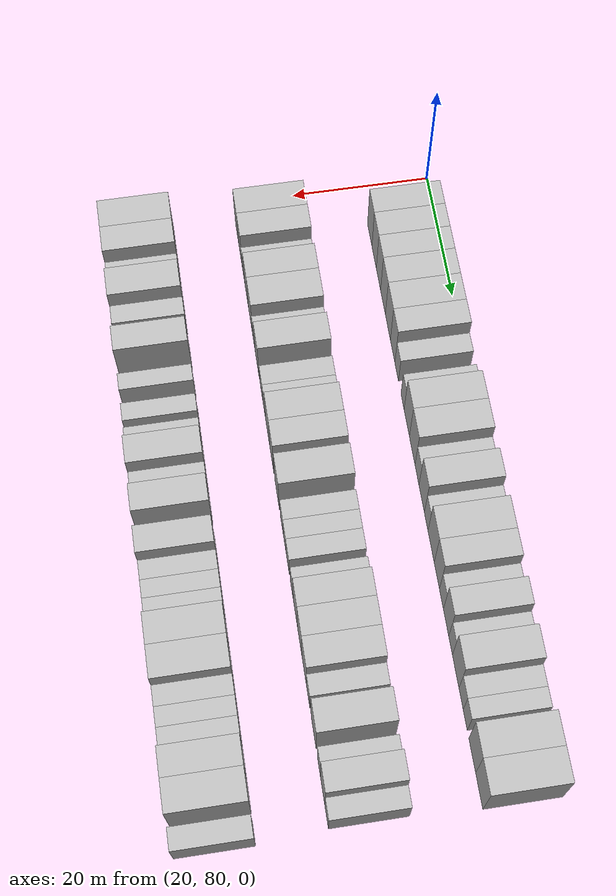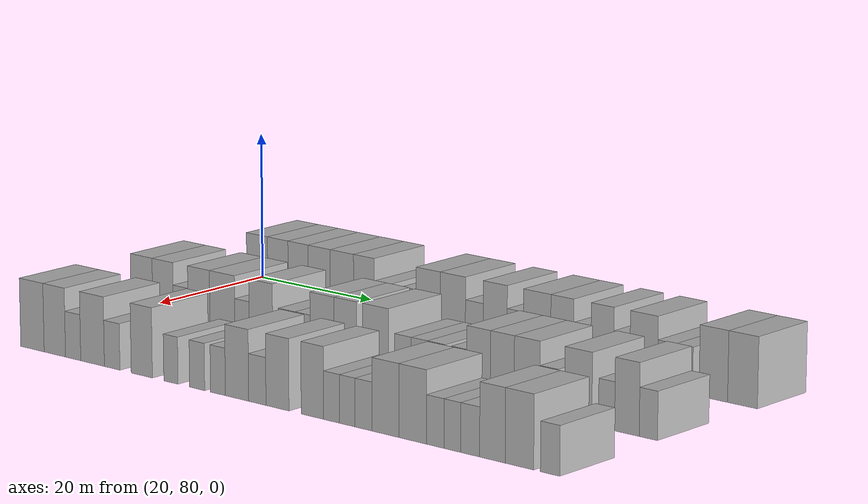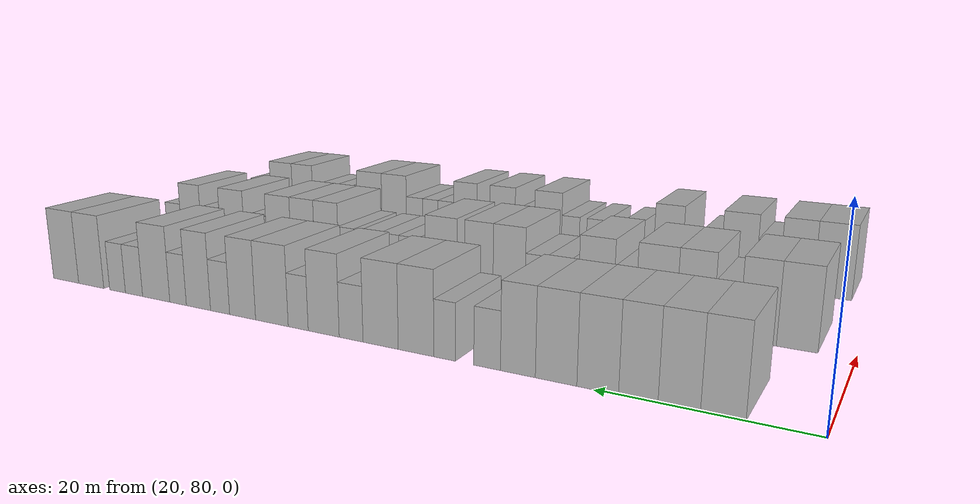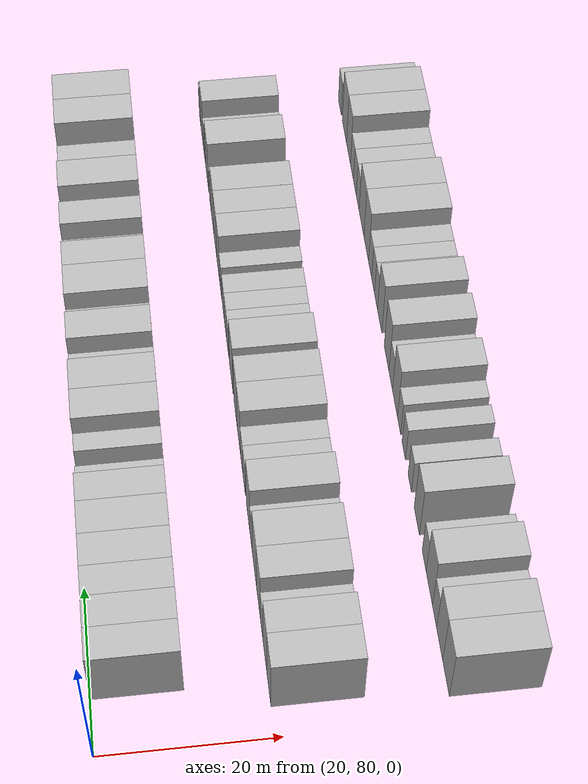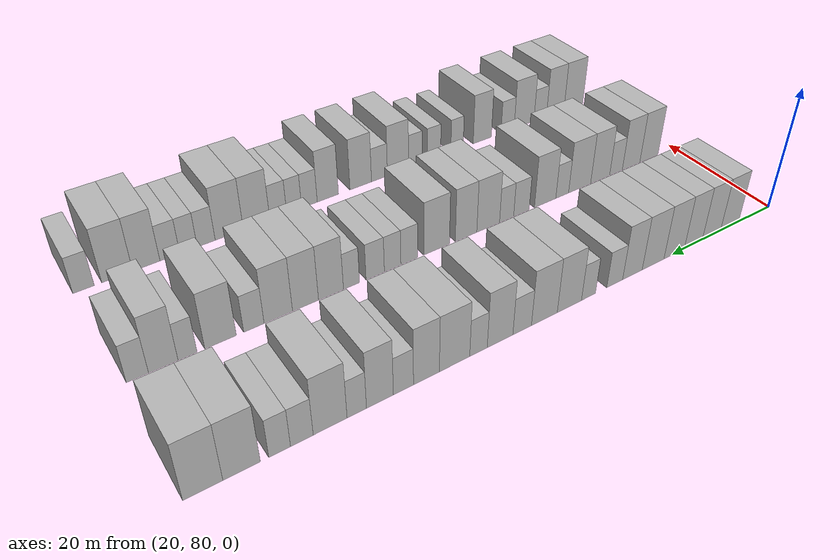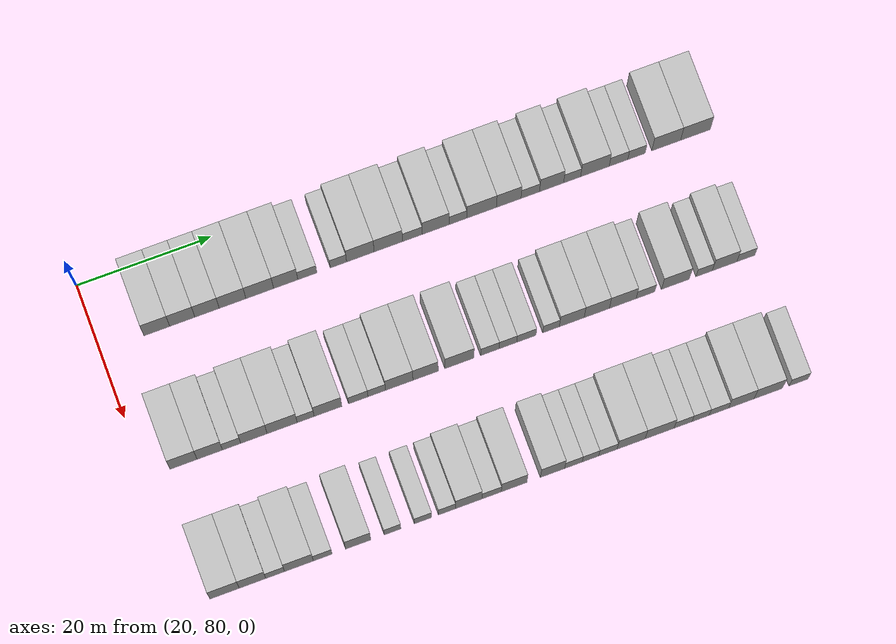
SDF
<sdf version="1.6">
 <world name="default">
  <model name="building_96">
   <static>1</static>
   <pose>25.0000 88.4164 0 0.000000 0.000000 0.000000</pose>
   <link name="link">
    <pose>0 0 4.50 0 0 0</pose>
    <collision name="collision"><geometry><box><size>10.0000 3.8488 9.0000</size></box></geometry></collision>
    <visual name="visual">
     <cast_shadows>0</cast_shadows>
     <geometry><box><size>10.0000 3.8488 9.0000</size></box></geometry>
     <material>
      <script>
       <uri>model://HANNAS_wall/materials/scripts</uri>
       <uri>model://HANNAS_wall/materials/textures</uri>
       <name>vrc/HANNAS_wall</name>
      </script>
     </material>
    </visual>
   </link>
  </model>
  <model name="building_97">
   <static>1</static>
   <pose>25.0000 92.2124 0 0.000000 0.000000 0.000000</pose>
   <link name="link">
    <pose>0 0 4.50 0 0 0</pose>
    <collision name="collision"><geometry><box><size>10.0000 3.7432 9.0000</size></box></geometry></collision>
    <visual name="visual">
     <cast_shadows>0</cast_shadows>
     <geometry><box><size>10.0000 3.7432 9.0000</size></box></geometry>
     <material>
      <script>
       <uri>model://HANNAS_wall/materials/scripts</uri>
       <uri>model://HANNAS_wall/materials/textures</uri>
       <name>vrc/HANNAS_wall</name>
      </script>
     </material>
    </visual>
   </link>
  </model>
  <model name="building_98">
   <static>1</static>
   <pose>25.0000 95.8940 0 0.000000 0.000000 0.000000</pose>
   <link name="link">
    <pose>0 0 4.50 0 0 0</pose>
    <collision name="collision"><geometry><box><size>10.0000 3.6201 9.0000</size></box></geometry></collision>
    <visual name="visual">
     <cast_shadows>0</cast_shadows>
     <geometry><box><size>10.0000 3.6201 9.0000</size></box></geometry>
     <material>
      <script>
       <uri>model://HANNAS_wall/materials/scripts</uri>
       <uri>model://HANNAS_wall/materials/textures</uri>
       <name>vrc/HANNAS_wall</name>
      </script>
     </material>
    </visual>
   </link>
  </model>
  <model name="building_99">
   <static>1</static>
   <pose>25.0000 99.6934 0 0.000000 0.000000 0.000000</pose>
   <link name="link">
    <pose>0 0 4.50 0 0 0</pose>
    <collision name="collision"><geometry><box><size>10.0000 3.9786 9.0000</size></box></geometry></collision>
    <visual name="visual">
     <cast_shadows>0</cast_shadows>
     <geometry><box><size>10.0000 3.9786 9.0000</size></box></geometry>
     <material>
      <script>
       <uri>model://HANNAS_wall/materials/scripts</uri>
       <uri>model://HANNAS_wall/materials/textures</uri>
       <name>vrc/HANNAS_wall</name>
      </script>
     </material>
    </visual>
   </link>
  </model>
  <model name="building_100">
   <static>1</static>
   <pose>25.0000 103.7533 0 0.000000 0.000000 0.000000</pose>
   <link name="link">
    <pose>0 0 4.50 0 0 0</pose>
    <collision name="collision"><geometry><box><size>10.0000 4.1412 9.0000</size></box></geometry></collision>
    <visual name="visual">
     <cast_shadows>0</cast_shadows>
     <geometry><box><size>10.0000 4.1412 9.0000</size></box></geometry>
     <material>
      <script>
       <uri>model://HANNAS_wall/materials/scripts</uri>
       <uri>model://HANNAS_wall/materials/textures</uri>
       <name>vrc/HANNAS_wall</name>
      </script>
     </material>
    </visual>
   </link>
  </model>
  <model name="building_101">
   <static>1</static>
   <pose>25.0000 107.6312 0 0.000000 0.000000 0.000000</pose>
   <link name="link">
    <pose>0 0 4.50 0 0 0</pose>
    <collision name="collision"><geometry><box><size>10.0000 3.6147 9.0000</size></box></geometry></collision>
    <visual name="visual">
     <cast_shadows>0</cast_shadows>
     <geometry><box><size>10.0000 3.6147 9.0000</size></box></geometry>
     <material>
      <script>
       <uri>model://HANNAS_wall/materials/scripts</uri>
       <uri>model://HANNAS_wall/materials/textures</uri>
       <name>vrc/HANNAS_wall</name>
      </script>
     </material>
    </visual>
   </link>
  </model>
  <model name="building_102">
   <static>1</static>
   <pose>25.0000 110.8674 0 0.000000 0.000000 0.000000</pose>
   <link name="link">
    <pose>0 0 3.00 0 0 0</pose>
    <collision name="collision"><geometry><box><size>10.0000 2.8577 6.0000</size></box></geometry></collision>
    <visual name="visual">
     <cast_shadows>0</cast_shadows>
     <geometry><box><size>10.0000 2.8577 6.0000</size></box></geometry>
     <material>
      <script>
       <uri>model://HANNAS_wall/materials/scripts</uri>
       <uri>model://HANNAS_wall/materials/textures</uri>
       <name>vrc/HANNAS_wall</name>
      </script>
     </material>
    </visual>
   </link>
  </model>
  <model name="building_103">
   <static>1</static>
   <pose>25.0000 115.5146 0 0.000000 0.000000 0.000000</pose>
   <link name="link">
    <pose>0 0 3.00 0 0 0</pose>
    <collision name="collision"><geometry><box><size>10.0000 2.4368 6.0000</size></box></geometry></collision>
    <visual name="visual">
     <cast_shadows>0</cast_shadows>
     <geometry><box><size>10.0000 2.4368 6.0000</size></box></geometry>
     <material>
      <script>
       <uri>model://HANNAS_wall/materials/scripts</uri>
       <uri>model://HANNAS_wall/materials/textures</uri>
       <name>vrc/HANNAS_wall</name>
      </script>
     </material>
    </visual>
   </link>
  </model>
  <model name="building_104">
   <static>1</static>
   <pose>25.0000 118.7937 0 0.000000 0.000000 0.000000</pose>
   <link name="link">
    <pose>0 0 4.50 0 0 0</pose>
    <collision name="collision"><geometry><box><size>10.0000 4.1213 9.0000</size></box></geometry></collision>
    <visual name="visual">
     <cast_shadows>0</cast_shadows>
     <geometry><box><size>10.0000 4.1213 9.0000</size></box></geometry>
     <material>
      <script>
       <uri>model://HANNAS_wall/materials/scripts</uri>
       <uri>model://HANNAS_wall/materials/textures</uri>
       <name>vrc/HANNAS_wall</name>
      </script>
     </material>
    </visual>
   </link>
  </model>
  <model name="building_105">
   <static>1</static>
   <pose>25.0000 122.9787 0 0.000000 0.000000 0.000000</pose>
   <link name="link">
    <pose>0 0 4.50 0 0 0</pose>
    <collision name="collision"><geometry><box><size>10.0000 4.2486 9.0000</size></box></geometry></collision>
    <visual name="visual">
     <cast_shadows>0</cast_shadows>
     <geometry><box><size>10.0000 4.2486 9.0000</size></box></geometry>
     <material>
      <script>
       <uri>model://HANNAS_wall/materials/scripts</uri>
       <uri>model://HANNAS_wall/materials/textures</uri>
       <name>vrc/HANNAS_wall</name>
      </script>
     </material>
    </visual>
   </link>
  </model>
  <model name="building_106">
   <static>1</static>
   <pose>25.0000 126.5879 0 0.000000 0.000000 0.000000</pose>
   <link name="link">
    <pose>0 0 3.00 0 0 0</pose>
    <collision name="collision"><geometry><box><size>10.0000 2.9697 6.0000</size></box></geometry></collision>
    <visual name="visual">
     <cast_shadows>0</cast_shadows>
     <geometry><box><size>10.0000 2.9697 6.0000</size></box></geometry>
     <material>
      <script>
       <uri>model://HANNAS_wall/materials/scripts</uri>
       <uri>model://HANNAS_wall/materials/textures</uri>
       <name>vrc/HANNAS_wall</name>
      </script>
     </material>
    </visual>
   </link>
  </model>
  <model name="building_107">
   <static>1</static>
   <pose>25.0000 130.0694 0 0.000000 0.000000 0.000000</pose>
   <link name="link">
    <pose>0 0 4.50 0 0 0</pose>
    <collision name="collision"><geometry><box><size>10.0000 3.9934 9.0000</size></box></geometry></collision>
    <visual name="visual">
     <cast_shadows>0</cast_shadows>
     <geometry><box><size>10.0000 3.9934 9.0000</size></box></geometry>
     <material>
      <script>
       <uri>model://HANNAS_wall/materials/scripts</uri>
       <uri>model://HANNAS_wall/materials/textures</uri>
       <name>vrc/HANNAS_wall</name>
      </script>
     </material>
    </visual>
   </link>
  </model>
  <model name="building_108">
   <static>1</static>
   <pose>25.0000 133.3914 0 0.000000 0.000000 0.000000</pose>
   <link name="link">
    <pose>0 0 3.00 0 0 0</pose>
    <collision name="collision"><geometry><box><size>10.0000 2.6506 6.0000</size></box></geometry></collision>
    <visual name="visual">
     <cast_shadows>0</cast_shadows>
     <geometry><box><size>10.0000 2.6506 6.0000</size></box></geometry>
     <material>
      <script>
       <uri>model://HANNAS_wall/materials/scripts</uri>
       <uri>model://HANNAS_wall/materials/textures</uri>
       <name>vrc/HANNAS_wall</name>
      </script>
     </material>
    </visual>
   </link>
  </model>
  <model name="building_109">
   <static>1</static>
   <pose>25.0000 136.9515 0 0.000000 0.000000 0.000000</pose>
   <link name="link">
    <pose>0 0 4.50 0 0 0</pose>
    <collision name="collision"><geometry><box><size>10.0000 4.4696 9.0000</size></box></geometry></collision>
    <visual name="visual">
     <cast_shadows>0</cast_shadows>
     <geometry><box><size>10.0000 4.4696 9.0000</size></box></geometry>
     <material>
      <script>
       <uri>model://HANNAS_wall/materials/scripts</uri>
       <uri>model://HANNAS_wall/materials/textures</uri>
       <name>vrc/HANNAS_wall</name>
      </script>
     </material>
    </visual>
   </link>
  </model>
  <model name="building_110">
   <static>1</static>
   <pose>25.0000 141.0312 0 0.000000 0.000000 0.000000</pose>
   <link name="link">
    <pose>0 0 4.50 0 0 0</pose>
    <collision name="collision"><geometry><box><size>10.0000 3.6898 9.0000</size></box></geometry></collision>
    <visual name="visual">
     <cast_shadows>0</cast_shadows>
     <geometry><box><size>10.0000 3.6898 9.0000</size></box></geometry>
     <material>
      <script>
       <uri>model://HANNAS_wall/materials/scripts</uri>
       <uri>model://HANNAS_wall/materials/textures</uri>
       <name>vrc/HANNAS_wall</name>
      </script>
     </material>
    </visual>
   </link>
  </model>
  <model name="building_111">
   <static>1</static>
   <pose>25.0000 144.2690 0 0.000000 0.000000 0.000000</pose>
   <link name="link">
    <pose>0 0 3.00 0 0 0</pose>
    <collision name="collision"><geometry><box><size>10.0000 2.7858 6.0000</size></box></geometry></collision>
    <visual name="visual">
     <cast_shadows>0</cast_shadows>
     <geometry><box><size>10.0000 2.7858 6.0000</size></box></geometry>
     <material>
      <script>
       <uri>model://HANNAS_wall/materials/scripts</uri>
       <uri>model://HANNAS_wall/materials/textures</uri>
       <name>vrc/HANNAS_wall</name>
      </script>
     </material>
    </visual>
   </link>
  </model>
  <model name="building_112">
   <static>1</static>
   <pose>25.0000 147.4776 0 0.000000 0.000000 0.000000</pose>
   <link name="link">
    <pose>0 0 4.50 0 0 0</pose>
    <collision name="collision"><geometry><box><size>10.0000 3.6314 9.0000</size></box></geometry></collision>
    <visual name="visual">
     <cast_shadows>0</cast_shadows>
     <geometry><box><size>10.0000 3.6314 9.0000</size></box></geometry>
     <material>
      <script>
       <uri>model://HANNAS_wall/materials/scripts</uri>
       <uri>model://HANNAS_wall/materials/textures</uri>
       <name>vrc/HANNAS_wall</name>
      </script>
     </material>
    </visual>
   </link>
  </model>
  <model name="building_113">
   <static>1</static>
   <pose>25.0000 150.5665 0 0.000000 0.000000 0.000000</pose>
   <link name="link">
    <pose>0 0 3.00 0 0 0</pose>
    <collision name="collision"><geometry><box><size>10.0000 2.5464 6.0000</size></box></geometry></collision>
    <visual name="visual">
     <cast_shadows>0</cast_shadows>
     <geometry><box><size>10.0000 2.5464 6.0000</size></box></geometry>
     <material>
      <script>
       <uri>model://HANNAS_wall/materials/scripts</uri>
       <uri>model://HANNAS_wall/materials/textures</uri>
       <name>vrc/HANNAS_wall</name>
      </script>
     </material>
    </visual>
   </link>
  </model>
  <model name="building_114">
   <static>1</static>
   <pose>25.0000 153.9998 0 0.000000 0.000000 0.000000</pose>
   <link name="link">
    <pose>0 0 4.50 0 0 0</pose>
    <collision name="collision"><geometry><box><size>10.0000 4.3201 9.0000</size></box></geometry></collision>
    <visual name="visual">
     <cast_shadows>0</cast_shadows>
     <geometry><box><size>10.0000 4.3201 9.0000</size></box></geometry>
     <material>
      <script>
       <uri>model://HANNAS_wall/materials/scripts</uri>
       <uri>model://HANNAS_wall/materials/textures</uri>
       <name>vrc/HANNAS_wall</name>
      </script>
     </material>
    </visual>
   </link>
  </model>
  <model name="building_115">
   <static>1</static>
   <pose>25.0000 157.5622 0 0.000000 0.000000 0.000000</pose>
   <link name="link">
    <pose>0 0 3.00 0 0 0</pose>
    <collision name="collision"><geometry><box><size>10.0000 2.8048 6.0000</size></box></geometry></collision>
    <visual name="visual">
     <cast_shadows>0</cast_shadows>
     <geometry><box><size>10.0000 2.8048 6.0000</size></box></geometry>
     <material>
      <script>
       <uri>model://HANNAS_wall/materials/scripts</uri>
       <uri>model://HANNAS_wall/materials/textures</uri>
       <name>vrc/HANNAS_wall</name>
      </script>
     </material>
    </visual>
   </link>
  </model>
  <model name="building_116">
   <static>1</static>
   <pose>25.0000 160.2775 0 0.000000 0.000000 0.000000</pose>
   <link name="link">
    <pose>0 0 3.00 0 0 0</pose>
    <collision name="collision"><geometry><box><size>10.0000 2.6258 6.0000</size></box></geometry></collision>
    <visual name="visual">
     <cast_shadows>0</cast_shadows>
     <geometry><box><size>10.0000 2.6258 6.0000</size></box></geometry>
     <material>
      <script>
       <uri>model://HANNAS_wall/materials/scripts</uri>
       <uri>model://HANNAS_wall/materials/textures</uri>
       <name>vrc/HANNAS_wall</name>
      </script>
     </material>
    </visual>
   </link>
  </model>
  <model name="building_117">
   <static>1</static>
   <pose>25.0000 164.7598 0 0.000000 0.000000 0.000000</pose>
   <link name="link">
    <pose>0 0 4.50 0 0 0</pose>
    <collision name="collision"><geometry><box><size>10.0000 4.3387 9.0000</size></box></geometry></collision>
    <visual name="visual">
     <cast_shadows>0</cast_shadows>
     <geometry><box><size>10.0000 4.3387 9.0000</size></box></geometry>
     <material>
      <script>
       <uri>model://HANNAS_wall/materials/scripts</uri>
       <uri>model://HANNAS_wall/materials/textures</uri>
       <name>vrc/HANNAS_wall</name>
      </script>
     </material>
    </visual>
   </link>
  </model>
  <model name="building_118">
   <static>1</static>
   <pose>25.0000 169.1681 0 0.000000 0.000000 0.000000</pose>
   <link name="link">
    <pose>0 0 4.50 0 0 0</pose>
    <collision name="collision"><geometry><box><size>10.0000 4.4780 9.0000</size></box></geometry></collision>
    <visual name="visual">
     <cast_shadows>0</cast_shadows>
     <geometry><box><size>10.0000 4.4780 9.0000</size></box></geometry>
     <material>
      <script>
       <uri>model://HANNAS_wall/materials/scripts</uri>
       <uri>model://HANNAS_wall/materials/textures</uri>
       <name>vrc/HANNAS_wall</name>
      </script>
     </material>
    </visual>
   </link>
  </model>
  <model name="building_263">
   <static>1</static>
   <pose>44.0000 85.5692 0 0.000000 0.000000 0.000000</pose>
   <link name="link">
    <pose>0 0 4.50 0 0 0</pose>
    <collision name="collision"><geometry><box><size>10.0000 4.0172 9.0000</size></box></geometry></collision>
    <visual name="visual">
     <cast_shadows>0</cast_shadows>
     <geometry><box><size>10.0000 4.0172 9.0000</size></box></geometry>
     <material>
      <script>
       <uri>model://HANNAS_wall/materials/scripts</uri>
       <uri>model://HANNAS_wall/materials/textures</uri>
       <name>vrc/HANNAS_wall</name>
      </script>
     </material>
    </visual>
   </link>
  </model>
  <model name="building_264">
   <static>1</static>
   <pose>44.0000 89.4637 0 0.000000 0.000000 0.000000</pose>
   <link name="link">
    <pose>0 0 4.50 0 0 0</pose>
    <collision name="collision"><geometry><box><size>10.0000 3.7717 9.0000</size></box></geometry></collision>
    <visual name="visual">
     <cast_shadows>0</cast_shadows>
     <geometry><box><size>10.0000 3.7717 9.0000</size></box></geometry>
     <material>
      <script>
       <uri>model://HANNAS_wall/materials/scripts</uri>
       <uri>model://HANNAS_wall/materials/textures</uri>
       <name>vrc/HANNAS_wall</name>
      </script>
     </material>
    </visual>
   </link>
  </model>
  <model name="building_265">
   <static>1</static>
   <pose>44.0000 92.6930 0 0.000000 0.000000 0.000000</pose>
   <link name="link">
    <pose>0 0 3.00 0 0 0</pose>
    <collision name="collision"><geometry><box><size>10.0000 2.6869 6.0000</size></box></geometry></collision>
    <visual name="visual">
     <cast_shadows>0</cast_shadows>
     <geometry><box><size>10.0000 2.6869 6.0000</size></box></geometry>
     <material>
      <script>
       <uri>model://HANNAS_wall/materials/scripts</uri>
       <uri>model://HANNAS_wall/materials/textures</uri>
       <name>vrc/HANNAS_wall</name>
      </script>
     </material>
    </visual>
   </link>
  </model>
  <model name="building_266">
   <static>1</static>
   <pose>44.0000 96.0038 0 0.000000 0.000000 0.000000</pose>
   <link name="link">
    <pose>0 0 4.50 0 0 0</pose>
    <collision name="collision"><geometry><box><size>10.0000 3.9347 9.0000</size></box></geometry></collision>
    <visual name="visual">
     <cast_shadows>0</cast_shadows>
     <geometry><box><size>10.0000 3.9347 9.0000</size></box></geometry>
     <material>
      <script>
       <uri>model://HANNAS_wall/materials/scripts</uri>
       <uri>model://HANNAS_wall/materials/textures</uri>
       <name>vrc/HANNAS_wall</name>
      </script>
     </material>
    </visual>
   </link>
  </model>
  <model name="building_267">
   <static>1</static>
   <pose>44.0000 100.1988 0 0.000000 0.000000 0.000000</pose>
   <link name="link">
    <pose>0 0 4.50 0 0 0</pose>
    <collision name="collision"><geometry><box><size>10.0000 4.4554 9.0000</size></box></geometry></collision>
    <visual name="visual">
     <cast_shadows>0</cast_shadows>
     <geometry><box><size>10.0000 4.4554 9.0000</size></box></geometry>
     <material>
      <script>
       <uri>model://HANNAS_wall/materials/scripts</uri>
       <uri>model://HANNAS_wall/materials/textures</uri>
       <name>vrc/HANNAS_wall</name>
      </script>
     </material>
    </visual>
   </link>
  </model>
  <model name="building_268">
   <static>1</static>
   <pose>44.0000 103.6896 0 0.000000 0.000000 0.000000</pose>
   <link name="link">
    <pose>0 0 3.00 0 0 0</pose>
    <collision name="collision"><geometry><box><size>10.0000 2.5262 6.0000</size></box></geometry></collision>
    <visual name="visual">
     <cast_shadows>0</cast_shadows>
     <geometry><box><size>10.0000 2.5262 6.0000</size></box></geometry>
     <material>
      <script>
       <uri>model://HANNAS_wall/materials/scripts</uri>
       <uri>model://HANNAS_wall/materials/textures</uri>
       <name>vrc/HANNAS_wall</name>
      </script>
     </material>
    </visual>
   </link>
  </model>
  <model name="building_269">
   <static>1</static>
   <pose>44.0000 107.0131 0 0.000000 0.000000 0.000000</pose>
   <link name="link">
    <pose>0 0 4.50 0 0 0</pose>
    <collision name="collision"><geometry><box><size>10.0000 4.1209 9.0000</size></box></geometry></collision>
    <visual name="visual">
     <cast_shadows>0</cast_shadows>
     <geometry><box><size>10.0000 4.1209 9.0000</size></box></geometry>
     <material>
      <script>
       <uri>model://HANNAS_wall/materials/scripts</uri>
       <uri>model://HANNAS_wall/materials/textures</uri>
       <name>vrc/HANNAS_wall</name>
      </script>
     </material>
    </visual>
   </link>
  </model>
  <model name="building_270">
   <static>1</static>
   <pose>44.0000 111.5215 0 0.000000 0.000000 0.000000</pose>
   <link name="link">
    <pose>0 0 3.00 0 0 0</pose>
    <collision name="collision"><geometry><box><size>10.0000 2.8960 6.0000</size></box></geometry></collision>
    <visual name="visual">
     <cast_shadows>0</cast_shadows>
     <geometry><box><size>10.0000 2.8960 6.0000</size></box></geometry>
     <material>
      <script>
       <uri>model://HANNAS_wall/materials/scripts</uri>
       <uri>model://HANNAS_wall/materials/textures</uri>
       <name>vrc/HANNAS_wall</name>
      </script>
     </material>
    </visual>
   </link>
  </model>
  <model name="building_271">
   <static>1</static>
   <pose>44.0000 114.2667 0 0.000000 0.000000 0.000000</pose>
   <link name="link">
    <pose>0 0 3.00 0 0 0</pose>
    <collision name="collision"><geometry><box><size>10.0000 2.5943 6.0000</size></box></geometry></collision>
    <visual name="visual">
     <cast_shadows>0</cast_shadows>
     <geometry><box><size>10.0000 2.5943 6.0000</size></box></geometry>
     <material>
      <script>
       <uri>model://HANNAS_wall/materials/scripts</uri>
       <uri>model://HANNAS_wall/materials/textures</uri>
       <name>vrc/HANNAS_wall</name>
      </script>
     </material>
    </visual>
   </link>
  </model>
  <model name="building_272">
   <static>1</static>
   <pose>44.0000 117.6112 0 0.000000 0.000000 0.000000</pose>
   <link name="link">
    <pose>0 0 4.50 0 0 0</pose>
    <collision name="collision"><geometry><box><size>10.0000 4.0947 9.0000</size></box></geometry></collision>
    <visual name="visual">
     <cast_shadows>0</cast_shadows>
     <geometry><box><size>10.0000 4.0947 9.0000</size></box></geometry>
     <material>
      <script>
       <uri>model://HANNAS_wall/materials/scripts</uri>
       <uri>model://HANNAS_wall/materials/textures</uri>
       <name>vrc/HANNAS_wall</name>
      </script>
     </material>
    </visual>
   </link>
  </model>
  <model name="building_273">
   <static>1</static>
   <pose>44.0000 121.5410 0 0.000000 0.000000 0.000000</pose>
   <link name="link">
    <pose>0 0 4.50 0 0 0</pose>
    <collision name="collision"><geometry><box><size>10.0000 3.7649 9.0000</size></box></geometry></collision>
    <visual name="visual">
     <cast_shadows>0</cast_shadows>
     <geometry><box><size>10.0000 3.7649 9.0000</size></box></geometry>
     <material>
      <script>
       <uri>model://HANNAS_wall/materials/scripts</uri>
       <uri>model://HANNAS_wall/materials/textures</uri>
       <name>vrc/HANNAS_wall</name>
      </script>
     </material>
    </visual>
   </link>
  </model>
  <model name="building_274">
   <static>1</static>
   <pose>44.0000 126.5900 0 0.000000 0.000000 0.000000</pose>
   <link name="link">
    <pose>0 0 4.50 0 0 0</pose>
    <collision name="collision"><geometry><box><size>10.0000 4.3331 9.0000</size></box></geometry></collision>
    <visual name="visual">
     <cast_shadows>0</cast_shadows>
     <geometry><box><size>10.0000 4.3331 9.0000</size></box></geometry>
     <material>
      <script>
       <uri>model://HANNAS_wall/materials/scripts</uri>
       <uri>model://HANNAS_wall/materials/textures</uri>
       <name>vrc/HANNAS_wall</name>
      </script>
     </material>
    </visual>
   </link>
  </model>
  <model name="building_275">
   <static>1</static>
   <pose>44.0000 131.1395 0 0.000000 0.000000 0.000000</pose>
   <link name="link">
    <pose>0 0 3.00 0 0 0</pose>
    <collision name="collision"><geometry><box><size>10.0000 2.7660 6.0000</size></box></geometry></collision>
    <visual name="visual">
     <cast_shadows>0</cast_shadows>
     <geometry><box><size>10.0000 2.7660 6.0000</size></box></geometry>
     <material>
      <script>
       <uri>model://HANNAS_wall/materials/scripts</uri>
       <uri>model://HANNAS_wall/materials/textures</uri>
       <name>vrc/HANNAS_wall</name>
      </script>
     </material>
    </visual>
   </link>
  </model>
  <model name="building_276">
   <static>1</static>
   <pose>44.0000 133.8413 0 0.000000 0.000000 0.000000</pose>
   <link name="link">
    <pose>0 0 3.00 0 0 0</pose>
    <collision name="collision"><geometry><box><size>10.0000 2.6375 6.0000</size></box></geometry></collision>
    <visual name="visual">
     <cast_shadows>0</cast_shadows>
     <geometry><box><size>10.0000 2.6375 6.0000</size></box></geometry>
     <material>
      <script>
       <uri>model://HANNAS_wall/materials/scripts</uri>
       <uri>model://HANNAS_wall/materials/textures</uri>
       <name>vrc/HANNAS_wall</name>
      </script>
     </material>
    </visual>
   </link>
  </model>
  <model name="building_277">
   <static>1</static>
   <pose>44.0000 136.6030 0 0.000000 0.000000 0.000000</pose>
   <link name="link">
    <pose>0 0 3.00 0 0 0</pose>
    <collision name="collision"><geometry><box><size>10.0000 2.8860 6.0000</size></box></geometry></collision>
    <visual name="visual">
     <cast_shadows>0</cast_shadows>
     <geometry><box><size>10.0000 2.8860 6.0000</size></box></geometry>
     <material>
      <script>
       <uri>model://HANNAS_wall/materials/scripts</uri>
       <uri>model://HANNAS_wall/materials/textures</uri>
       <name>vrc/HANNAS_wall</name>
      </script>
     </material>
    </visual>
   </link>
  </model>
  <model name="building_278">
   <static>1</static>
   <pose>44.0000 140.2768 0 0.000000 0.000000 0.000000</pose>
   <link name="link">
    <pose>0 0 3.00 0 0 0</pose>
    <collision name="collision"><geometry><box><size>10.0000 2.4615 6.0000</size></box></geometry></collision>
    <visual name="visual">
     <cast_shadows>0</cast_shadows>
     <geometry><box><size>10.0000 2.4615 6.0000</size></box></geometry>
     <material>
      <script>
       <uri>model://HANNAS_wall/materials/scripts</uri>
       <uri>model://HANNAS_wall/materials/textures</uri>
       <name>vrc/HANNAS_wall</name>
      </script>
     </material>
    </visual>
   </link>
  </model>
  <model name="building_279">
   <static>1</static>
   <pose>44.0000 143.3740 0 0.000000 0.000000 0.000000</pose>
   <link name="link">
    <pose>0 0 4.50 0 0 0</pose>
    <collision name="collision"><geometry><box><size>10.0000 3.7329 9.0000</size></box></geometry></collision>
    <visual name="visual">
     <cast_shadows>0</cast_shadows>
     <geometry><box><size>10.0000 3.7329 9.0000</size></box></geometry>
     <material>
      <script>
       <uri>model://HANNAS_wall/materials/scripts</uri>
       <uri>model://HANNAS_wall/materials/textures</uri>
       <name>vrc/HANNAS_wall</name>
      </script>
     </material>
    </visual>
   </link>
  </model>
  <model name="building_280">
   <static>1</static>
   <pose>44.0000 147.1297 0 0.000000 0.000000 0.000000</pose>
   <link name="link">
    <pose>0 0 4.50 0 0 0</pose>
    <collision name="collision"><geometry><box><size>10.0000 3.7787 9.0000</size></box></geometry></collision>
    <visual name="visual">
     <cast_shadows>0</cast_shadows>
     <geometry><box><size>10.0000 3.7787 9.0000</size></box></geometry>
     <material>
      <script>
       <uri>model://HANNAS_wall/materials/scripts</uri>
       <uri>model://HANNAS_wall/materials/textures</uri>
       <name>vrc/HANNAS_wall</name>
      </script>
     </material>
    </visual>
   </link>
  </model>
  <model name="building_281">
   <static>1</static>
   <pose>44.0000 151.0255 0 0.000000 0.000000 0.000000</pose>
   <link name="link">
    <pose>0 0 4.50 0 0 0</pose>
    <collision name="collision"><geometry><box><size>10.0000 4.0128 9.0000</size></box></geometry></collision>
    <visual name="visual">
     <cast_shadows>0</cast_shadows>
     <geometry><box><size>10.0000 4.0128 9.0000</size></box></geometry>
     <material>
      <script>
       <uri>model://HANNAS_wall/materials/scripts</uri>
       <uri>model://HANNAS_wall/materials/textures</uri>
       <name>vrc/HANNAS_wall</name>
      </script>
     </material>
    </visual>
   </link>
  </model>
  <model name="building_282">
   <static>1</static>
   <pose>44.0000 154.4330 0 0.000000 0.000000 0.000000</pose>
   <link name="link">
    <pose>0 0 3.00 0 0 0</pose>
    <collision name="collision"><geometry><box><size>10.0000 2.8023 6.0000</size></box></geometry></collision>
    <visual name="visual">
     <cast_shadows>0</cast_shadows>
     <geometry><box><size>10.0000 2.8023 6.0000</size></box></geometry>
     <material>
      <script>
       <uri>model://HANNAS_wall/materials/scripts</uri>
       <uri>model://HANNAS_wall/materials/textures</uri>
       <name>vrc/HANNAS_wall</name>
      </script>
     </material>
    </visual>
   </link>
  </model>
  <model name="building_283">
   <static>1</static>
   <pose>44.0000 158.9296 0 0.000000 0.000000 0.000000</pose>
   <link name="link">
    <pose>0 0 4.50 0 0 0</pose>
    <collision name="collision"><geometry><box><size>10.0000 4.1908 9.0000</size></box></geometry></collision>
    <visual name="visual">
     <cast_shadows>0</cast_shadows>
     <geometry><box><size>10.0000 4.1908 9.0000</size></box></geometry>
     <material>
      <script>
       <uri>model://HANNAS_wall/materials/scripts</uri>
       <uri>model://HANNAS_wall/materials/textures</uri>
       <name>vrc/HANNAS_wall</name>
      </script>
     </material>
    </visual>
   </link>
  </model>
  <model name="building_284">
   <static>1</static>
   <pose>44.0000 163.2420 0 0.000000 0.000000 0.000000</pose>
   <link name="link">
    <pose>0 0 3.00 0 0 0</pose>
    <collision name="collision"><geometry><box><size>10.0000 2.4342 6.0000</size></box></geometry></collision>
    <visual name="visual">
     <cast_shadows>0</cast_shadows>
     <geometry><box><size>10.0000 2.4342 6.0000</size></box></geometry>
     <material>
      <script>
       <uri>model://HANNAS_wall/materials/scripts</uri>
       <uri>model://HANNAS_wall/materials/textures</uri>
       <name>vrc/HANNAS_wall</name>
      </script>
     </material>
    </visual>
   </link>
  </model>
  <model name="building_285">
   <static>1</static>
   <pose>44.0000 166.3050 0 0.000000 0.000000 0.000000</pose>
   <link name="link">
    <pose>0 0 4.50 0 0 0</pose>
    <collision name="collision"><geometry><box><size>10.0000 3.6917 9.0000</size></box></geometry></collision>
    <visual name="visual">
     <cast_shadows>0</cast_shadows>
     <geometry><box><size>10.0000 3.6917 9.0000</size></box></geometry>
     <material>
      <script>
       <uri>model://HANNAS_wall/materials/scripts</uri>
       <uri>model://HANNAS_wall/materials/textures</uri>
       <name>vrc/HANNAS_wall</name>
      </script>
     </material>
    </visual>
   </link>
  </model>
  <model name="building_286">
   <static>1</static>
   <pose>44.0000 169.5100 0 0.000000 0.000000 0.000000</pose>
   <link name="link">
    <pose>0 0 3.00 0 0 0</pose>
    <collision name="collision"><geometry><box><size>10.0000 2.7184 6.0000</size></box></geometry></collision>
    <visual name="visual">
     <cast_shadows>0</cast_shadows>
     <geometry><box><size>10.0000 2.7184 6.0000</size></box></geometry>
     <material>
      <script>
       <uri>model://HANNAS_wall/materials/scripts</uri>
       <uri>model://HANNAS_wall/materials/textures</uri>
       <name>vrc/HANNAS_wall</name>
      </script>
     </material>
    </visual>
   </link>
  </model>
  <model name="building_447">
   <static>1</static>
   <pose>63.0000 84.8067 0 0.000000 0.000000 0.000000</pose>
   <link name="link">
    <pose>0 0 4.50 0 0 0</pose>
    <collision name="collision"><geometry><box><size>10.0000 4.3233 9.0000</size></box></geometry></collision>
    <visual name="visual">
     <cast_shadows>0</cast_shadows>
     <geometry><box><size>10.0000 4.3233 9.0000</size></box></geometry>
     <material>
      <script>
       <uri>model://HANNAS_wall/materials/scripts</uri>
       <uri>model://HANNAS_wall/materials/textures</uri>
       <name>vrc/HANNAS_wall</name>
      </script>
     </material>
    </visual>
   </link>
  </model>
  <model name="building_448">
   <static>1</static>
   <pose>63.0000 88.9258 0 0.000000 0.000000 0.000000</pose>
   <link name="link">
    <pose>0 0 4.50 0 0 0</pose>
    <collision name="collision"><geometry><box><size>10.0000 3.9150 9.0000</size></box></geometry></collision>
    <visual name="visual">
     <cast_shadows>0</cast_shadows>
     <geometry><box><size>10.0000 3.9150 9.0000</size></box></geometry>
     <material>
      <script>
       <uri>model://HANNAS_wall/materials/scripts</uri>
       <uri>model://HANNAS_wall/materials/textures</uri>
       <name>vrc/HANNAS_wall</name>
      </script>
     </material>
    </visual>
   </link>
  </model>
  <model name="building_449">
   <static>1</static>
   <pose>63.0000 92.2634 0 0.000000 0.000000 0.000000</pose>
   <link name="link">
    <pose>0 0 3.00 0 0 0</pose>
    <collision name="collision"><geometry><box><size>10.0000 2.7602 6.0000</size></box></geometry></collision>
    <visual name="visual">
     <cast_shadows>0</cast_shadows>
     <geometry><box><size>10.0000 2.7602 6.0000</size></box></geometry>
     <material>
      <script>
       <uri>model://HANNAS_wall/materials/scripts</uri>
       <uri>model://HANNAS_wall/materials/textures</uri>
       <name>vrc/HANNAS_wall</name>
      </script>
     </material>
    </visual>
   </link>
  </model>
  <model name="building_450">
   <static>1</static>
   <pose>63.0000 95.7734 0 0.000000 0.000000 0.000000</pose>
   <link name="link">
    <pose>0 0 4.50 0 0 0</pose>
    <collision name="collision"><geometry><box><size>10.0000 4.2597 9.0000</size></box></geometry></collision>
    <visual name="visual">
     <cast_shadows>0</cast_shadows>
     <geometry><box><size>10.0000 4.2597 9.0000</size></box></geometry>
     <material>
      <script>
       <uri>model://HANNAS_wall/materials/scripts</uri>
       <uri>model://HANNAS_wall/materials/textures</uri>
       <name>vrc/HANNAS_wall</name>
      </script>
     </material>
    </visual>
   </link>
  </model>
  <model name="building_451">
   <static>1</static>
   <pose>63.0000 99.2891 0 0.000000 0.000000 0.000000</pose>
   <link name="link">
    <pose>0 0 3.00 0 0 0</pose>
    <collision name="collision"><geometry><box><size>10.0000 2.7719 6.0000</size></box></geometry></collision>
    <visual name="visual">
     <cast_shadows>0</cast_shadows>
     <geometry><box><size>10.0000 2.7719 6.0000</size></box></geometry>
     <material>
      <script>
       <uri>model://HANNAS_wall/materials/scripts</uri>
       <uri>model://HANNAS_wall/materials/textures</uri>
       <name>vrc/HANNAS_wall</name>
      </script>
     </material>
    </visual>
   </link>
  </model>
  <model name="building_452">
   <static>1</static>
   <pose>63.0000 104.5376 0 0.000000 0.000000 0.000000</pose>
   <link name="link">
    <pose>0 0 4.50 0 0 0</pose>
    <collision name="collision"><geometry><box><size>10.0000 3.7251 9.0000</size></box></geometry></collision>
    <visual name="visual">
     <cast_shadows>0</cast_shadows>
     <geometry><box><size>10.0000 3.7251 9.0000</size></box></geometry>
     <material>
      <script>
       <uri>model://HANNAS_wall/materials/scripts</uri>
       <uri>model://HANNAS_wall/materials/textures</uri>
       <name>vrc/HANNAS_wall</name>
      </script>
     </material>
    </visual>
   </link>
  </model>
  <model name="building_453">
   <static>1</static>
   <pose>63.0000 109.6305 0 0.000000 0.000000 0.000000</pose>
   <link name="link">
    <pose>0 0 3.00 0 0 0</pose>
    <collision name="collision"><geometry><box><size>10.0000 2.4607 6.0000</size></box></geometry></collision>
    <visual name="visual">
     <cast_shadows>0</cast_shadows>
     <geometry><box><size>10.0000 2.4607 6.0000</size></box></geometry>
     <material>
      <script>
       <uri>model://HANNAS_wall/materials/scripts</uri>
       <uri>model://HANNAS_wall/materials/textures</uri>
       <name>vrc/HANNAS_wall</name>
      </script>
     </material>
    </visual>
   </link>
  </model>
  <model name="building_454">
   <static>1</static>
   <pose>63.0000 114.1502 0 0.000000 0.000000 0.000000</pose>
   <link name="link">
    <pose>0 0 3.00 0 0 0</pose>
    <collision name="collision"><geometry><box><size>10.0000 2.5788 6.0000</size></box></geometry></collision>
    <visual name="visual">
     <cast_shadows>0</cast_shadows>
     <geometry><box><size>10.0000 2.5788 6.0000</size></box></geometry>
     <material>
      <script>
       <uri>model://HANNAS_wall/materials/scripts</uri>
       <uri>model://HANNAS_wall/materials/textures</uri>
       <name>vrc/HANNAS_wall</name>
      </script>
     </material>
    </visual>
   </link>
  </model>
  <model name="building_455">
   <static>1</static>
   <pose>63.0000 117.7013 0 0.000000 0.000000 0.000000</pose>
   <link name="link">
    <pose>0 0 3.00 0 0 0</pose>
    <collision name="collision"><geometry><box><size>10.0000 2.5234 6.0000</size></box></geometry></collision>
    <visual name="visual">
     <cast_shadows>0</cast_shadows>
     <geometry><box><size>10.0000 2.5234 6.0000</size></box></geometry>
     <material>
      <script>
       <uri>model://HANNAS_wall/materials/scripts</uri>
       <uri>model://HANNAS_wall/materials/textures</uri>
       <name>vrc/HANNAS_wall</name>
      </script>
     </material>
    </visual>
   </link>
  </model>
  <model name="building_456">
   <static>1</static>
   <pose>63.0000 120.9242 0 0.000000 0.000000 0.000000</pose>
   <link name="link">
    <pose>0 0 4.50 0 0 0</pose>
    <collision name="collision"><geometry><box><size>10.0000 3.9225 9.0000</size></box></geometry></collision>
    <visual name="visual">
     <cast_shadows>0</cast_shadows>
     <geometry><box><size>10.0000 3.9225 9.0000</size></box></geometry>
     <material>
      <script>
       <uri>model://HANNAS_wall/materials/scripts</uri>
       <uri>model://HANNAS_wall/materials/textures</uri>
       <name>vrc/HANNAS_wall</name>
      </script>
     </material>
    </visual>
   </link>
  </model>
  <model name="building_457">
   <static>1</static>
   <pose>63.0000 124.3253 0 0.000000 0.000000 0.000000</pose>
   <link name="link">
    <pose>0 0 3.00 0 0 0</pose>
    <collision name="collision"><geometry><box><size>10.0000 2.8797 6.0000</size></box></geometry></collision>
    <visual name="visual">
     <cast_shadows>0</cast_shadows>
     <geometry><box><size>10.0000 2.8797 6.0000</size></box></geometry>
     <material>
      <script>
       <uri>model://HANNAS_wall/materials/scripts</uri>
       <uri>model://HANNAS_wall/materials/textures</uri>
       <name>vrc/HANNAS_wall</name>
      </script>
     </material>
    </visual>
   </link>
  </model>
  <model name="building_458">
   <static>1</static>
   <pose>63.0000 127.6726 0 0.000000 0.000000 0.000000</pose>
   <link name="link">
    <pose>0 0 4.50 0 0 0</pose>
    <collision name="collision"><geometry><box><size>10.0000 3.8150 9.0000</size></box></geometry></collision>
    <visual name="visual">
     <cast_shadows>0</cast_shadows>
     <geometry><box><size>10.0000 3.8150 9.0000</size></box></geometry>
     <material>
      <script>
       <uri>model://HANNAS_wall/materials/scripts</uri>
       <uri>model://HANNAS_wall/materials/textures</uri>
       <name>vrc/HANNAS_wall</name>
      </script>
     </material>
    </visual>
   </link>
  </model>
  <model name="building_459">
   <static>1</static>
   <pose>63.0000 133.3926 0 0.000000 0.000000 0.000000</pose>
   <link name="link">
    <pose>0 0 4.50 0 0 0</pose>
    <collision name="collision"><geometry><box><size>10.0000 3.6249 9.0000</size></box></geometry></collision>
    <visual name="visual">
     <cast_shadows>0</cast_shadows>
     <geometry><box><size>10.0000 3.6249 9.0000</size></box></geometry>
     <material>
      <script>
       <uri>model://HANNAS_wall/materials/scripts</uri>
       <uri>model://HANNAS_wall/materials/textures</uri>
       <name>vrc/HANNAS_wall</name>
      </script>
     </material>
    </visual>
   </link>
  </model>
  <model name="building_460">
   <static>1</static>
   <pose>63.0000 136.5105 0 0.000000 0.000000 0.000000</pose>
   <link name="link">
    <pose>0 0 3.00 0 0 0</pose>
    <collision name="collision"><geometry><box><size>10.0000 2.6110 6.0000</size></box></geometry></collision>
    <visual name="visual">
     <cast_shadows>0</cast_shadows>
     <geometry><box><size>10.0000 2.6110 6.0000</size></box></geometry>
     <material>
      <script>
       <uri>model://HANNAS_wall/materials/scripts</uri>
       <uri>model://HANNAS_wall/materials/textures</uri>
       <name>vrc/HANNAS_wall</name>
      </script>
     </material>
    </visual>
   </link>
  </model>
  <model name="building_461">
   <static>1</static>
   <pose>63.0000 139.0443 0 0.000000 0.000000 0.000000</pose>
   <link name="link">
    <pose>0 0 3.00 0 0 0</pose>
    <collision name="collision"><geometry><box><size>10.0000 2.4566 6.0000</size></box></geometry></collision>
    <visual name="visual">
     <cast_shadows>0</cast_shadows>
     <geometry><box><size>10.0000 2.4566 6.0000</size></box></geometry>
     <material>
      <script>
       <uri>model://HANNAS_wall/materials/scripts</uri>
       <uri>model://HANNAS_wall/materials/textures</uri>
       <name>vrc/HANNAS_wall</name>
      </script>
     </material>
    </visual>
   </link>
  </model>
  <model name="building_462">
   <static>1</static>
   <pose>63.0000 141.6348 0 0.000000 0.000000 0.000000</pose>
   <link name="link">
    <pose>0 0 3.00 0 0 0</pose>
    <collision name="collision"><geometry><box><size>10.0000 2.7244 6.0000</size></box></geometry></collision>
    <visual name="visual">
     <cast_shadows>0</cast_shadows>
     <geometry><box><size>10.0000 2.7244 6.0000</size></box></geometry>
     <material>
      <script>
       <uri>model://HANNAS_wall/materials/scripts</uri>
       <uri>model://HANNAS_wall/materials/textures</uri>
       <name>vrc/HANNAS_wall</name>
      </script>
     </material>
    </visual>
   </link>
  </model>
  <model name="building_463">
   <static>1</static>
   <pose>63.0000 145.0940 0 0.000000 0.000000 0.000000</pose>
   <link name="link">
    <pose>0 0 4.50 0 0 0</pose>
    <collision name="collision"><geometry><box><size>10.0000 4.1940 9.0000</size></box></geometry></collision>
    <visual name="visual">
     <cast_shadows>0</cast_shadows>
     <geometry><box><size>10.0000 4.1940 9.0000</size></box></geometry>
     <material>
      <script>
       <uri>model://HANNAS_wall/materials/scripts</uri>
       <uri>model://HANNAS_wall/materials/textures</uri>
       <name>vrc/HANNAS_wall</name>
      </script>
     </material>
    </visual>
   </link>
  </model>
  <model name="building_464">
   <static>1</static>
   <pose>63.0000 149.3500 0 0.000000 0.000000 0.000000</pose>
   <link name="link">
    <pose>0 0 4.50 0 0 0</pose>
    <collision name="collision"><geometry><box><size>10.0000 4.3179 9.0000</size></box></geometry></collision>
    <visual name="visual">
     <cast_shadows>0</cast_shadows>
     <geometry><box><size>10.0000 4.3179 9.0000</size></box></geometry>
     <material>
      <script>
       <uri>model://HANNAS_wall/materials/scripts</uri>
       <uri>model://HANNAS_wall/materials/textures</uri>
       <name>vrc/HANNAS_wall</name>
      </script>
     </material>
    </visual>
   </link>
  </model>
  <model name="building_465">
   <static>1</static>
   <pose>63.0000 152.8555 0 0.000000 0.000000 0.000000</pose>
   <link name="link">
    <pose>0 0 3.00 0 0 0</pose>
    <collision name="collision"><geometry><box><size>10.0000 2.6931 6.0000</size></box></geometry></collision>
    <visual name="visual">
     <cast_shadows>0</cast_shadows>
     <geometry><box><size>10.0000 2.6931 6.0000</size></box></geometry>
     <material>
      <script>
       <uri>model://HANNAS_wall/materials/scripts</uri>
       <uri>model://HANNAS_wall/materials/textures</uri>
       <name>vrc/HANNAS_wall</name>
      </script>
     </material>
    </visual>
   </link>
  </model>
  <model name="building_466">
   <static>1</static>
   <pose>63.0000 155.4861 0 0.000000 0.000000 0.000000</pose>
   <link name="link">
    <pose>0 0 3.00 0 0 0</pose>
    <collision name="collision"><geometry><box><size>10.0000 2.5682 6.0000</size></box></geometry></collision>
    <visual name="visual">
     <cast_shadows>0</cast_shadows>
     <geometry><box><size>10.0000 2.5682 6.0000</size></box></geometry>
     <material>
      <script>
       <uri>model://HANNAS_wall/materials/scripts</uri>
       <uri>model://HANNAS_wall/materials/textures</uri>
       <name>vrc/HANNAS_wall</name>
      </script>
     </material>
    </visual>
   </link>
  </model>
  <model name="building_467">
   <static>1</static>
   <pose>63.0000 158.2001 0 0.000000 0.000000 0.000000</pose>
   <link name="link">
    <pose>0 0 3.00 0 0 0</pose>
    <collision name="collision"><geometry><box><size>10.0000 2.8596 6.0000</size></box></geometry></collision>
    <visual name="visual">
     <cast_shadows>0</cast_shadows>
     <geometry><box><size>10.0000 2.8596 6.0000</size></box></geometry>
     <material>
      <script>
       <uri>model://HANNAS_wall/materials/scripts</uri>
       <uri>model://HANNAS_wall/materials/textures</uri>
       <name>vrc/HANNAS_wall</name>
      </script>
     </material>
    </visual>
   </link>
  </model>
  <model name="building_468">
   <static>1</static>
   <pose>63.0000 161.5525 0 0.000000 0.000000 0.000000</pose>
   <link name="link">
    <pose>0 0 4.50 0 0 0</pose>
    <collision name="collision"><geometry><box><size>10.0000 3.8453 9.0000</size></box></geometry></collision>
    <visual name="visual">
     <cast_shadows>0</cast_shadows>
     <geometry><box><size>10.0000 3.8453 9.0000</size></box></geometry>
     <material>
      <script>
       <uri>model://HANNAS_wall/materials/scripts</uri>
       <uri>model://HANNAS_wall/materials/textures</uri>
       <name>vrc/HANNAS_wall</name>
      </script>
     </material>
    </visual>
   </link>
  </model>
  <model name="building_469">
   <static>1</static>
   <pose>63.0000 165.5923 0 0.000000 0.000000 0.000000</pose>
   <link name="link">
    <pose>0 0 4.50 0 0 0</pose>
    <collision name="collision"><geometry><box><size>10.0000 4.2342 9.0000</size></box></geometry></collision>
    <visual name="visual">
     <cast_shadows>0</cast_shadows>
     <geometry><box><size>10.0000 4.2342 9.0000</size></box></geometry>
     <material>
      <script>
       <uri>model://HANNAS_wall/materials/scripts</uri>
       <uri>model://HANNAS_wall/materials/textures</uri>
       <name>vrc/HANNAS_wall</name>
      </script>
     </material>
    </visual>
   </link>
  </model>
  <model name="building_470">
   <static>1</static>
   <pose>63.0000 170.1327 0 0.000000 0.000000 0.000000</pose>
   <link name="link">
    <pose>0 0 3.00 0 0 0</pose>
    <collision name="collision"><geometry><box><size>10.0000 2.8466 6.0000</size></box></geometry></collision>
    <visual name="visual">
     <cast_shadows>0</cast_shadows>
     <geometry><box><size>10.0000 2.8466 6.0000</size></box></geometry>
     <material>
      <script>
       <uri>model://HANNAS_wall/materials/scripts</uri>
       <uri>model://HANNAS_wall/materials/textures</uri>
       <name>vrc/HANNAS_wall</name>
      </script>
     </material>
    </visual>
   </link>
  </model>
 </world>
</sdf>
